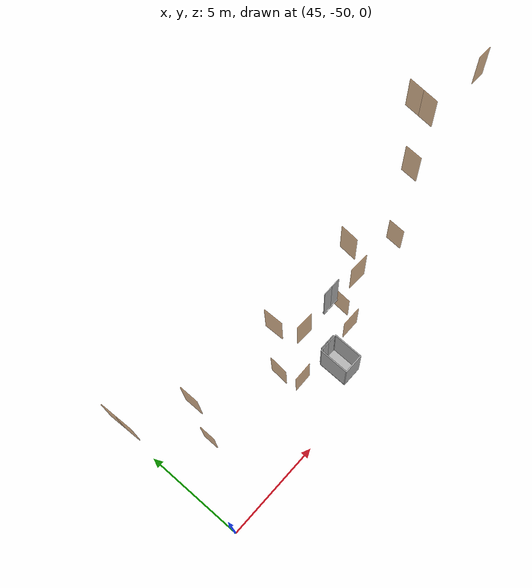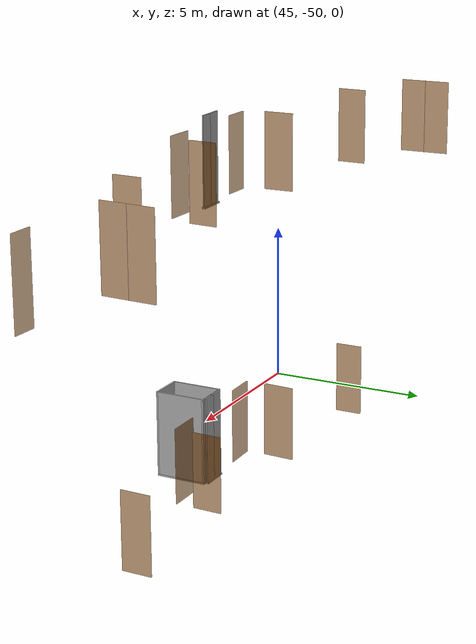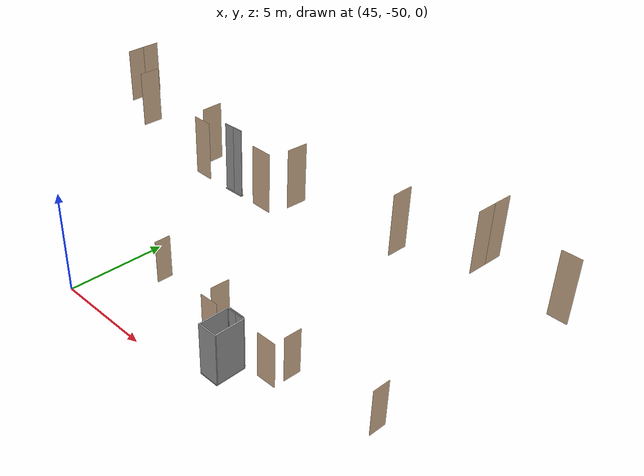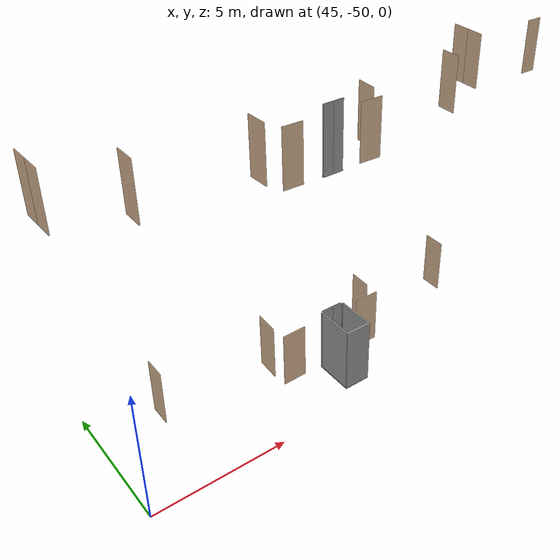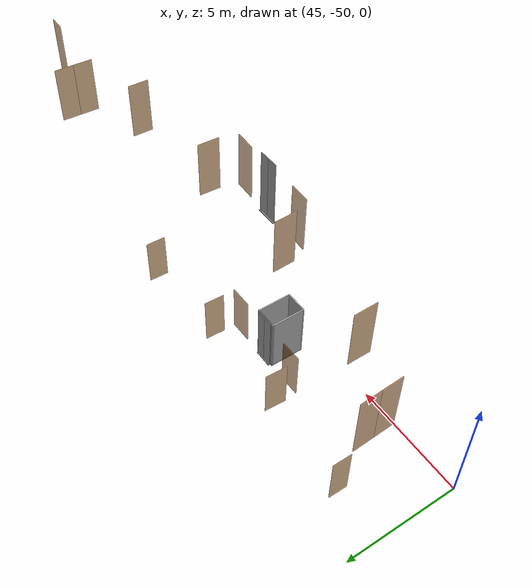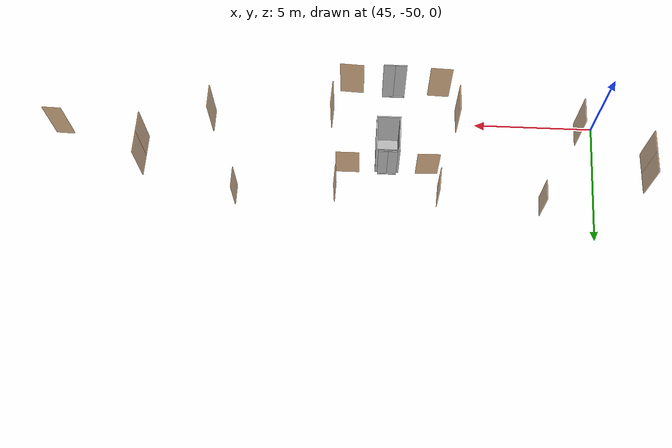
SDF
<sdf version="1.7">
 <world name="estce">
  <model name="bano01">
   <pose>47.27149607737123 -46.41799548548202 0.0 0 0 1.5707963267948966</pose>
   <link name="right">
    <pose>0 0 1.11 0 0 0</pose>
    <visual name="right_visual">
     <geometry><box><size>0.8199446803225976 0.03 2.2</size></box></geometry>
     <material><ambient>0.5 0.25 0 0.6</ambient><diffuse>0.5 0.25 0 0.6</diffuse></material>
    </visual>
    <collision name="right_collision">
     <geometry><box><size>0.8199446803225976 0.03 2.2</size></box></geometry>
     <surface><contact><collide_bitmask>0x02</collide_bitmask></contact></surface>
    </collision>
    <inertial>
     <mass>50.0</mass>
     <inertia><ixx>20.17041666666667</ixx><iyy>22.967955328288866</iyy><izz>2.805038661622195</izz></inertia>
    </inertial>
   </link>
   <joint name="right_joint" type="revolute">
    <parent>world</parent>
    <child>right</child>
    <axis><xyz>0 0 -1</xyz><limit><lower>0</lower><upper>1.57</upper></limit></axis>
    <pose>0.4149723401612988 0 0 0 0 0</pose>
   </joint>
   <plugin name="door" filename="libdoor.so">
    <v_max_door>0.5</v_max_door>
    <a_max_door>0.3</a_max_door>
    <a_nom_door>0.15</a_nom_door>
    <dx_min_door>0.01</dx_min_door>
    <f_max_door>500.0</f_max_door>
    <door name="bano01" type="SwingDoor" left_joint_name="empty_joint" right_joint_name="right_joint"/>
   </plugin>
  </model>
  <model name="bano05">
   <pose>52.06670083466635 -47.72443394818039 0.0 0 0 -3.1200870272772754</pose>
   <link name="right">
    <pose>0 0 1.11 0 0 0</pose>
    <visual name="right_visual">
     <geometry><box><size>0.9377301620501713 0.03 2.2</size></box></geometry>
     <material><ambient>0.5 0.25 0 0.6</ambient><diffuse>0.5 0.25 0 0.6</diffuse></material>
    </visual>
    <collision name="right_collision">
     <geometry><box><size>0.9377301620501713 0.03 2.2</size></box></geometry>
     <surface><contact><collide_bitmask>0x02</collide_bitmask></contact></surface>
    </collision>
    <inertial>
     <mass>50.0</mass>
     <inertia><ixx>20.17041666666667</ixx><iyy>23.830574403411006</iyy><izz>3.6676577367443364</izz></inertia>
    </inertial>
   </link>
   <joint name="right_joint" type="revolute">
    <parent>world</parent>
    <child>right</child>
    <axis><xyz>0 0 -1</xyz><limit><lower>0</lower><upper>1.57</upper></limit></axis>
    <pose>0.4738650810250857 0 0 0 0 0</pose>
   </joint>
   <plugin name="door" filename="libdoor.so">
    <v_max_door>0.5</v_max_door>
    <a_max_door>0.3</a_max_door>
    <a_nom_door>0.15</a_nom_door>
    <dx_min_door>0.01</dx_min_door>
    <f_max_door>500.0</f_max_door>
    <door name="bano05" type="SwingDoor" left_joint_name="empty_joint" right_joint_name="right_joint"/>
   </plugin>
  </model>
  <model name="bano06">
   <pose>55.41423266186635 -47.68037463002387 0.0 0 0 0.0023663209530105163</pose>
   <link name="right">
    <pose>0 0 1.11 0 0 0</pose>
    <visual name="right_visual">
     <geometry><box><size>0.976455656863217 0.03 2.2</size></box></geometry>
     <material><ambient>0.5 0.25 0 0.6</ambient><diffuse>0.5 0.25 0 0.6</diffuse></material>
    </visual>
    <collision name="right_collision">
     <geometry><box><size>0.976455656863217 0.03 2.2</size></box></geometry>
     <surface><contact><collide_bitmask>0x02</collide_bitmask></contact></surface>
    </collision>
    <inertial>
     <mass>50.0</mass>
     <inertia><ixx>20.17041666666667</ixx><iyy>24.139440207584073</iyy><izz>3.9765235409174027</izz></inertia>
    </inertial>
   </link>
   <joint name="right_joint" type="revolute">
    <parent>world</parent>
    <child>right</child>
    <axis><xyz>0 0 1</xyz><limit><lower>0</lower><upper>1.57</upper></limit></axis>
    <pose>0.4932278284316085 0 0 0 0 0</pose>
   </joint>
   <plugin name="door" filename="libdoor.so">
    <v_max_door>0.5</v_max_door>
    <a_max_door>0.3</a_max_door>
    <a_nom_door>0.15</a_nom_door>
    <dx_min_door>0.01</dx_min_door>
    <f_max_door>500.0</f_max_door>
    <door name="bano06" type="SwingDoor" left_joint_name="empty_joint" right_joint_name="right_joint"/>
   </plugin>
  </model>
  <model name="TD0008CW">
   <pose>55.8966070053002 -46.72136061243229 0.0 0 0 1.5301015660938087</pose>
   <link name="right">
    <pose>0 0 1.11 0 0 0</pose>
    <visual name="right_visual">
     <geometry><box><size>0.8644361759346737 0.03 2.2</size></box></geometry>
     <material><ambient>0.5 0.25 0 0.6</ambient><diffuse>0.5 0.25 0 0.6</diffuse></material>
    </visual>
    <collision name="right_collision">
     <geometry><box><size>0.8644361759346737 0.03 2.2</size></box></geometry>
     <surface><contact><collide_bitmask>0x02</collide_bitmask></contact></surface>
    </collision>
    <inertial>
     <mass>50.0</mass>
     <inertia><ixx>20.17041666666667</ixx><iyy>23.280207926102346</iyy><izz>3.117291259435676</izz></inertia>
    </inertial>
   </link>
   <joint name="right_joint" type="revolute">
    <parent>world</parent>
    <child>right</child>
    <axis><xyz>0 0 1</xyz><limit><lower>0</lower><upper>1.57</upper></limit></axis>
    <pose>0.43721808796733685 0 0 0 0 0</pose>
   </joint>
   <plugin name="door" filename="libdoor.so">
    <v_max_door>0.5</v_max_door>
    <a_max_door>0.3</a_max_door>
    <a_nom_door>0.15</a_nom_door>
    <dx_min_door>0.01</dx_min_door>
    <f_max_door>500.0</f_max_door>
    <door name="TD0008CW" type="SwingDoor" left_joint_name="empty_joint" right_joint_name="right_joint"/>
   </plugin>
  </model>
  <model name="TD0007CW">
   <pose>51.58219422672672 -46.71441391912132 0.0 0 0 1.5172743729555838</pose>
   <link name="right">
    <pose>0 0 1.11 0 0 0</pose>
    <visual name="right_visual">
     <geometry><box><size>0.9398812216442772 0.03 2.2</size></box></geometry>
     <material><ambient>0.5 0.25 0 0.6</ambient><diffuse>0.5 0.25 0 0.6</diffuse></material>
    </visual>
    <collision name="right_collision">
     <geometry><box><size>0.9398812216442772 0.03 2.2</size></box></geometry>
     <surface><contact><collide_bitmask>0x02</collide_bitmask></contact></surface>
    </collision>
    <inertial>
     <mass>50.0</mass>
     <inertia><ixx>20.17041666666667</ixx><iyy>23.847402961664752</iyy><izz>3.6844862949980794</izz></inertia>
    </inertial>
   </link>
   <joint name="right_joint" type="revolute">
    <parent>world</parent>
    <child>right</child>
    <axis><xyz>0 0 -1</xyz><limit><lower>0</lower><upper>1.57</upper></limit></axis>
    <pose>0.4749406108221386 0 0 0 0 0</pose>
   </joint>
   <plugin name="door" filename="libdoor.so">
    <v_max_door>0.5</v_max_door>
    <a_max_door>0.3</a_max_door>
    <a_nom_door>0.15</a_nom_door>
    <dx_min_door>0.01</dx_min_door>
    <f_max_door>500.0</f_max_door>
    <door name="TD0007CW" type="SwingDoor" left_joint_name="empty_joint" right_joint_name="right_joint"/>
   </plugin>
  </model>
  <model name="bano07">
   <pose>60.06898852289842 -46.43233776989466 0.0 0 0 1.54727733475389</pose>
   <link name="right">
    <pose>0 0 1.11 0 0 0</pose>
    <visual name="right_visual">
     <geometry><box><size>0.8585207486559601 0.03 2.2</size></box></geometry>
     <material><ambient>0.5 0.25 0 0.6</ambient><diffuse>0.5 0.25 0 0.6</diffuse></material>
    </visual>
    <collision name="right_collision">
     <geometry><box><size>0.8585207486559601 0.03 2.2</size></box></geometry>
     <surface><contact><collide_bitmask>0x02</collide_bitmask></contact></surface>
    </collision>
    <inertial>
     <mass>50.0</mass>
     <inertia><ixx>20.17041666666667</ixx><iyy>23.237741149469965</iyy><izz>3.0748244828032925</izz></inertia>
    </inertial>
   </link>
   <joint name="right_joint" type="revolute">
    <parent>world</parent>
    <child>right</child>
    <axis><xyz>0 0 1</xyz><limit><lower>0</lower><upper>1.57</upper></limit></axis>
    <pose>0.43426037432798004 0 0 0 0 0</pose>
   </joint>
   <plugin name="door" filename="libdoor.so">
    <v_max_door>0.5</v_max_door>
    <a_max_door>0.3</a_max_door>
    <a_nom_door>0.15</a_nom_door>
    <dx_min_door>0.01</dx_min_door>
    <f_max_door>500.0</f_max_door>
    <door name="bano07" type="SwingDoor" left_joint_name="empty_joint" right_joint_name="right_joint"/>
   </plugin>
  </model>
  <model name="TD1118CP4">
   <pose>44.94644914665497 -45.02413210114766 8.0 0 0 -1.5336877245950296</pose>
   <link name="right">
    <pose>0.3714555084669651 0 1.11 0 0 0</pose>
    <visual name="right_visual">
     <geometry><box><size>0.7329110169339302 0.03 2.2</size></box></geometry>
     <material><ambient>0.5 0.25 0 0.6</ambient><diffuse>0.5 0.25 0 0.6</diffuse></material>
    </visual>
    <collision name="right_collision">
     <geometry><box><size>0.7329110169339302 0.03 2.2</size></box></geometry>
     <surface><contact><collide_bitmask>0x02</collide_bitmask></contact></surface>
    </collision>
    <inertial>
     <mass>50.0</mass>
     <inertia><ixx>20.17041666666667</ixx><iyy>22.40482732809637</iyy><izz>2.2419106614296993</izz></inertia>
    </inertial>
   </link>
   <joint name="right_joint" type="revolute">
    <parent>world</parent>
    <child>right</child>
    <axis><xyz>0 0 -1</xyz><limit><lower>0</lower><upper>1.57</upper></limit></axis>
    <pose>0.3714555084669651 0 0 0 0 0</pose>
   </joint>
   <link name="left">
    <pose>-0.3714555084669651 0 1.11 0 0 0</pose>
    <visual name="left_visual">
     <geometry><box><size>0.7329110169339302 0.03 2.2</size></box></geometry>
     <material><ambient>0.5 0.25 0 0.6</ambient><diffuse>0.5 0.25 0 0.6</diffuse></material>
    </visual>
    <collision name="left_collision">
     <geometry><box><size>0.7329110169339302 0.03 2.2</size></box></geometry>
     <surface><contact><collide_bitmask>0x02</collide_bitmask></contact></surface>
    </collision>
    <inertial>
     <mass>50.0</mass>
     <inertia><ixx>20.17041666666667</ixx><iyy>22.40482732809637</iyy><izz>2.2419106614296993</izz></inertia>
    </inertial>
   </link>
   <joint name="left_joint" type="revolute">
    <parent>world</parent>
    <child>left</child>
    <axis><xyz>0 0 -1</xyz><limit><lower>-1.57</lower><upper>0</upper></limit></axis>
    <pose>-0.3714555084669651 0 0 0 0 0</pose>
   </joint>
   <plugin name="door" filename="libdoor.so">
    <v_max_door>0.5</v_max_door>
    <a_max_door>0.3</a_max_door>
    <a_nom_door>0.15</a_nom_door>
    <dx_min_door>0.01</dx_min_door>
    <f_max_door>500.0</f_max_door>
    <door name="TD1118CP4" type="DoubleSwingDoor" left_joint_name="left_joint" right_joint_name="right_joint"/>
   </plugin>
  </model>
  <model name="TD0114CW">
   <pose>51.50515808954793 -46.74820920088596 8.0 0 0 1.6056425163225825</pose>
   <link name="right">
    <pose>0 0 1.11 0 0 0</pose>
    <visual name="right_visual">
     <geometry><box><size>0.8454856513248106 0.03 2.2</size></box></geometry>
     <material><ambient>0.5 0.25 0 0.6</ambient><diffuse>0.5 0.25 0 0.6</diffuse></material>
    </visual>
    <collision name="right_collision">
     <geometry><box><size>0.8454856513248106 0.03 2.2</size></box></geometry>
     <surface><contact><collide_bitmask>0x02</collide_bitmask></contact></surface>
    </collision>
    <inertial>
     <mass>50.0</mass>
     <inertia><ixx>20.17041666666667</ixx><iyy>23.145191610817253</iyy><izz>2.9822749441505803</izz></inertia>
    </inertial>
   </link>
   <joint name="right_joint" type="revolute">
    <parent>world</parent>
    <child>right</child>
    <axis><xyz>0 0 -1</xyz><limit><lower>0</lower><upper>1.57</upper></limit></axis>
    <pose>0.4277428256624053 0 0 0 0 0</pose>
   </joint>
   <plugin name="door" filename="libdoor.so">
    <v_max_door>0.5</v_max_door>
    <a_max_door>0.3</a_max_door>
    <a_nom_door>0.15</a_nom_door>
    <dx_min_door>0.01</dx_min_door>
    <f_max_door>500.0</f_max_door>
    <door name="TD0114CW" type="SwingDoor" left_joint_name="empty_joint" right_joint_name="right_joint"/>
   </plugin>
  </model>
  <model name="bano1">
   <pose>47.28208015738405 -46.41913130619041 8.0 0 0 1.5764696971908632</pose>
   <link name="right">
    <pose>0 0 1.11 0 0 0</pose>
    <visual name="right_visual">
     <geometry><box><size>0.8397545239237783 0.03 2.2</size></box></geometry>
     <material><ambient>0.5 0.25 0 0.6</ambient><diffuse>0.5 0.25 0 0.6</diffuse></material>
    </visual>
    <collision name="right_collision">
     <geometry><box><size>0.8397545239237783 0.03 2.2</size></box></geometry>
     <surface><contact><collide_bitmask>0x02</collide_bitmask></contact></surface>
    </collision>
    <inertial>
     <mass>50.0</mass>
     <inertia><ixx>20.17041666666667</ixx><iyy>23.104948585210217</iyy><izz>2.942031918543548</izz></inertia>
    </inertial>
   </link>
   <joint name="right_joint" type="revolute">
    <parent>world</parent>
    <child>right</child>
    <axis><xyz>0 0 -1</xyz><limit><lower>0</lower><upper>1.57</upper></limit></axis>
    <pose>0.42487726196188913 0 0 0 0 0</pose>
   </joint>
   <plugin name="door" filename="libdoor.so">
    <v_max_door>0.5</v_max_door>
    <a_max_door>0.3</a_max_door>
    <a_nom_door>0.15</a_nom_door>
    <dx_min_door>0.01</dx_min_door>
    <f_max_door>500.0</f_max_door>
    <door name="bano1" type="SwingDoor" left_joint_name="empty_joint" right_joint_name="right_joint"/>
   </plugin>
  </model>
  <model name="bano5">
   <pose>52.148068485913775 -47.74097451939845 8.0 0 0 3.1065786581625146</pose>
   <link name="right">
    <pose>0 0 1.11 0 0 0</pose>
    <visual name="right_visual">
     <geometry><box><size>0.7657234564264961 0.03 2.2</size></box></geometry>
     <material><ambient>0.5 0.25 0 0.6</ambient><diffuse>0.5 0.25 0 0.6</diffuse></material>
    </visual>
    <collision name="right_collision">
     <geometry><box><size>0.7657234564264961 0.03 2.2</size></box></geometry>
     <surface><contact><collide_bitmask>0x02</collide_bitmask></contact></surface>
    </collision>
    <inertial>
     <mass>50.0</mass>
     <inertia><ixx>20.17041666666667</ixx><iyy>22.60971838217392</iyy><izz>2.44680171550725</izz></inertia>
    </inertial>
   </link>
   <joint name="right_joint" type="revolute">
    <parent>world</parent>
    <child>right</child>
    <axis><xyz>0 0 -1</xyz><limit><lower>0</lower><upper>1.57</upper></limit></axis>
    <pose>0.38786172821324805 0 0 0 0 0</pose>
   </joint>
   <plugin name="door" filename="libdoor.so">
    <v_max_door>0.5</v_max_door>
    <a_max_door>0.3</a_max_door>
    <a_nom_door>0.15</a_nom_door>
    <dx_min_door>0.01</dx_min_door>
    <f_max_door>500.0</f_max_door>
    <door name="bano5" type="SwingDoor" left_joint_name="empty_joint" right_joint_name="right_joint"/>
   </plugin>
  </model>
  <model name="bano6">
   <pose>55.234940433910175 -47.778894369654296 8.0 0 0 -0.04549059902802838</pose>
   <link name="right">
    <pose>0 0 1.11 0 0 0</pose>
    <visual name="right_visual">
     <geometry><box><size>0.8297533818517685 0.03 2.2</size></box></geometry>
     <material><ambient>0.5 0.25 0 0.6</ambient><diffuse>0.5 0.25 0 0.6</diffuse></material>
    </visual>
    <collision name="right_collision">
     <geometry><box><size>0.8297533818517685 0.03 2.2</size></box></geometry>
     <surface><contact><collide_bitmask>0x02</collide_bitmask></contact></surface>
    </collision>
    <inertial>
     <mass>50.0</mass>
     <inertia><ixx>20.17041666666667</ixx><iyy>23.035377811226866</iyy><izz>2.8724611445601953</izz></inertia>
    </inertial>
   </link>
   <joint name="right_joint" type="revolute">
    <parent>world</parent>
    <child>right</child>
    <axis><xyz>0 0 1</xyz><limit><lower>0</lower><upper>1.57</upper></limit></axis>
    <pose>0.41987669092588426 0 0 0 0 0</pose>
   </joint>
   <plugin name="door" filename="libdoor.so">
    <v_max_door>0.5</v_max_door>
    <a_max_door>0.3</a_max_door>
    <a_nom_door>0.15</a_nom_door>
    <dx_min_door>0.01</dx_min_door>
    <f_max_door>500.0</f_max_door>
    <door name="bano6" type="SwingDoor" left_joint_name="empty_joint" right_joint_name="right_joint"/>
   </plugin>
  </model>
  <model name="TD0115CW">
   <pose>55.88847397362011 -46.73766025088821 8.0 0 0 1.5145458440551605</pose>
   <link name="right">
    <pose>0 0 1.11 0 0 0</pose>
    <visual name="right_visual">
     <geometry><box><size>0.8030795554057361 0.03 2.2</size></box></geometry>
     <material><ambient>0.5 0.25 0 0.6</ambient><diffuse>0.5 0.25 0 0.6</diffuse></material>
    </visual>
    <collision name="right_collision">
     <geometry><box><size>0.8030795554057361 0.03 2.2</size></box></geometry>
     <surface><contact><collide_bitmask>0x02</collide_bitmask></contact></surface>
    </collision>
    <inertial>
     <mass>50.0</mass>
     <inertia><ixx>20.17041666666667</ixx><iyy>22.853903217961147</iyy><izz>2.690986551294478</izz></inertia>
    </inertial>
   </link>
   <joint name="right_joint" type="revolute">
    <parent>world</parent>
    <child>right</child>
    <axis><xyz>0 0 1</xyz><limit><lower>0</lower><upper>1.57</upper></limit></axis>
    <pose>0.40653977770286803 0 0 0 0 0</pose>
   </joint>
   <plugin name="door" filename="libdoor.so">
    <v_max_door>0.5</v_max_door>
    <a_max_door>0.3</a_max_door>
    <a_nom_door>0.15</a_nom_door>
    <dx_min_door>0.01</dx_min_door>
    <f_max_door>500.0</f_max_door>
    <door name="TD0115CW" type="SwingDoor" left_joint_name="empty_joint" right_joint_name="right_joint"/>
   </plugin>
  </model>
  <model name="bano7">
   <pose>60.0810335978438 -46.42408954515949 8.0 0 0 1.541245749789117</pose>
   <link name="right">
    <pose>0 0 1.11 0 0 0</pose>
    <visual name="right_visual">
     <geometry><box><size>0.7806089194577953 0.03 2.2</size></box></geometry>
     <material><ambient>0.5 0.25 0 0.6</ambient><diffuse>0.5 0.25 0 0.6</diffuse></material>
    </visual>
    <collision name="right_collision">
     <geometry><box><size>0.7806089194577953 0.03 2.2</size></box></geometry>
     <surface><contact><collide_bitmask>0x02</collide_bitmask></contact></surface>
    </collision>
    <inertial>
     <mass>50.0</mass>
     <inertia><ixx>20.17041666666667</ixx><iyy>22.70562618807112</iyy><izz>2.5427095214044453</izz></inertia>
    </inertial>
   </link>
   <joint name="right_joint" type="revolute">
    <parent>world</parent>
    <child>right</child>
    <axis><xyz>0 0 1</xyz><limit><lower>0</lower><upper>1.57</upper></limit></axis>
    <pose>0.39530445972889766 0 0 0 0 0</pose>
   </joint>
   <plugin name="door" filename="libdoor.so">
    <v_max_door>0.5</v_max_door>
    <a_max_door>0.3</a_max_door>
    <a_nom_door>0.15</a_nom_door>
    <dx_min_door>0.01</dx_min_door>
    <f_max_door>500.0</f_max_door>
    <door name="bano7" type="SwingDoor" left_joint_name="empty_joint" right_joint_name="right_joint"/>
   </plugin>
  </model>
  <model name="TD0121CI">
   <pose>65.33917160585753 -45.769495344585565 8.0 0 0 -0.030342913966224207</pose>
   <link name="right">
    <pose>0 0 1.11 0 0 0</pose>
    <visual name="right_visual">
     <geometry><box><size>0.6424077246111844 0.03 2.2</size></box></geometry>
     <material><ambient>0.5 0.25 0 0.6</ambient><diffuse>0.5 0.25 0 0.6</diffuse></material>
    </visual>
    <collision name="right_collision">
     <geometry><box><size>0.6424077246111844 0.03 2.2</size></box></geometry>
     <surface><contact><collide_bitmask>0x02</collide_bitmask></contact></surface>
    </collision>
    <inertial>
     <mass>50.0</mass>
     <inertia><ixx>20.17041666666667</ixx><iyy>21.886198686000505</iyy><izz>1.723282019333831</izz></inertia>
    </inertial>
   </link>
   <joint name="right_joint" type="revolute">
    <parent>world</parent>
    <child>right</child>
    <axis><xyz>0 0 1</xyz><limit><lower>0</lower><upper>1.57</upper></limit></axis>
    <pose>0.32620386230559223 0 0 0 0 0</pose>
   </joint>
   <plugin name="door" filename="libdoor.so">
    <v_max_door>0.5</v_max_door>
    <a_max_door>0.3</a_max_door>
    <a_nom_door>0.15</a_nom_door>
    <dx_min_door>0.01</dx_min_door>
    <f_max_door>500.0</f_max_door>
    <door name="TD0121CI" type="SwingDoor" left_joint_name="empty_joint" right_joint_name="right_joint"/>
   </plugin>
  </model>
  <model name="TD0119CP2">
   <pose>62.408047540033564 -45.011140276778626 8.0 0 0 1.5193640332775675</pose>
   <link name="right">
    <pose>0.3663535106896813 0 1.11 0 0 0</pose>
    <visual name="right_visual">
     <geometry><box><size>0.7227070213793626 0.03 2.2</size></box></geometry>
     <material><ambient>0.5 0.25 0 0.6</ambient><diffuse>0.5 0.25 0 0.6</diffuse></material>
    </visual>
    <collision name="right_collision">
     <geometry><box><size>0.7227070213793626 0.03 2.2</size></box></geometry>
     <surface><contact><collide_bitmask>0x02</collide_bitmask></contact></surface>
    </collision>
    <inertial>
     <mass>50.0</mass>
     <inertia><ixx>20.17041666666667</ixx><iyy>22.342939328129297</iyy><izz>2.1800226614626275</izz></inertia>
    </inertial>
   </link>
   <joint name="right_joint" type="revolute">
    <parent>world</parent>
    <child>right</child>
    <axis><xyz>0 0 -1</xyz><limit><lower>0</lower><upper>1.57</upper></limit></axis>
    <pose>0.3663535106896813 0 0 0 0 0</pose>
   </joint>
   <link name="left">
    <pose>-0.3663535106896813 0 1.11 0 0 0</pose>
    <visual name="left_visual">
     <geometry><box><size>0.7227070213793626 0.03 2.2</size></box></geometry>
     <material><ambient>0.5 0.25 0 0.6</ambient><diffuse>0.5 0.25 0 0.6</diffuse></material>
    </visual>
    <collision name="left_collision">
     <geometry><box><size>0.7227070213793626 0.03 2.2</size></box></geometry>
     <surface><contact><collide_bitmask>0x02</collide_bitmask></contact></surface>
    </collision>
    <inertial>
     <mass>50.0</mass>
     <inertia><ixx>20.17041666666667</ixx><iyy>22.342939328129297</iyy><izz>2.1800226614626275</izz></inertia>
    </inertial>
   </link>
   <joint name="left_joint" type="revolute">
    <parent>world</parent>
    <child>left</child>
    <axis><xyz>0 0 -1</xyz><limit><lower>-1.57</lower><upper>0</upper></limit></axis>
    <pose>-0.3663535106896813 0 0 0 0 0</pose>
   </joint>
   <plugin name="door" filename="libdoor.so">
    <v_max_door>0.5</v_max_door>
    <a_max_door>0.3</a_max_door>
    <a_nom_door>0.15</a_nom_door>
    <dx_min_door>0.01</dx_min_door>
    <f_max_door>500.0</f_max_door>
    <door name="TD0119CP2" type="DoubleSwingDoor" left_joint_name="left_joint" right_joint_name="right_joint"/>
   </plugin>
  </model>
  <model name="ShaftDoor_lift2td0_L1_lift2_door">
   <pose>53.75551043547694 -47.68096139483516 0.0 0 0 0.0</pose>
   <link name="right_door">
    <pose>0.2 0 1.25 0 0 0</pose>
    <visual name="right_door_visual">
     <geometry><box><size>0.4 0.03 2.5</size></box></geometry>
     <material>
      <ambient>0.5 0.5 0.5 1</ambient>
      <diffuse>0.7 0.7 0.7 1</diffuse>
      <specular>0.6 0.6 0.6 1</specular>
      <emissive>0.1 0.1 0.1 1</emissive>
     </material>
    </visual>
    <collision name="right_door_collision">
     <geometry><box><size>0.4 0.03 2.5</size></box></geometry>
     <surface><contact><collide_bitmask>0x02</collide_bitmask></contact></surface>
    </collision>
   </link>
   <joint name="right_joint" type="prismatic">
    <parent>world</parent>
    <child>right_door</child>
    <axis><xyz>1 0 0</xyz><limit><lower>0</lower><upper>0.4</upper></limit></axis>
   </joint>
   <link name="left_door">
    <pose>-0.2 0 1.25 0 0 0</pose>
    <visual name="left_door_visual">
     <geometry><box><size>0.4 0.03 2.5</size></box></geometry>
     <material>
      <ambient>0.5 0.5 0.5 1</ambient>
      <diffuse>0.7 0.7 0.7 1</diffuse>
      <specular>0.6 0.6 0.6 1</specular>
      <emissive>0.1 0.1 0.1 1</emissive>
     </material>
    </visual>
    <collision name="left_door_collision">
     <geometry><box><size>0.4 0.03 2.5</size></box></geometry>
     <surface><contact><collide_bitmask>0x02</collide_bitmask></contact></surface>
    </collision>
   </link>
   <joint name="left_joint" type="prismatic">
    <parent>world</parent>
    <child>left_door</child>
    <axis><xyz>1 0 0</xyz><limit><lower>-0.4</lower><upper>0</upper></limit></axis>
   </joint>
   <link name="ramp">
    <pose>0 0 -0.025 0 0 0</pose>
    <visual name="ramp_visual">
     <geometry><box><size>0.8 0.1 0.05</size></box></geometry>
     <material>
      <ambient>0.5 0.5 0.5 1</ambient>
      <diffuse>0.7 0.7 0.7 1</diffuse>
      <specular>0.6 0.6 0.6 1</specular>
      <emissive>0.1 0.1 0.1 1</emissive>
     </material>
    </visual>
    <collision name="ramp_collision">
     <geometry><box><size>0.8 0.1 0.05</size></box></geometry>
     <surface><contact><collide_bitmask>0x02</collide_bitmask></contact></surface>
    </collision>
   </link>
   <joint name="ramp_joint" type="fixed"><parent>world</parent><child>ramp</child></joint>
   <plugin name="door" filename="libdoor.so">
    <v_max_door>0.3</v_max_door>
    <a_max_door>0.2</a_max_door>
    <a_nom_door>0.1</a_nom_door>
    <dx_min_door>0.0001</dx_min_door>
    <f_max_door>35.0</f_max_door>
    <door left_joint_name="left_joint" name="ShaftDoor_lift2td0_L1_lift2_door" right_joint_name="right_joint" type="DoubleSlidingDoor"/>
   </plugin>
  </model>
  <model name="ShaftDoor_lift2td0_L2_lift2_door">
   <pose>53.75551043547694 -47.68096139483516 8.0 0 0 0.0</pose>
   <link name="right_door">
    <pose>0.2 0 1.25 0 0 0</pose>
    <visual name="right_door_visual">
     <geometry><box><size>0.4 0.03 2.5</size></box></geometry>
     <material>
      <ambient>0.5 0.5 0.5 1</ambient>
      <diffuse>0.7 0.7 0.7 1</diffuse>
      <specular>0.6 0.6 0.6 1</specular>
      <emissive>0.1 0.1 0.1 1</emissive>
     </material>
    </visual>
    <collision name="right_door_collision">
     <geometry><box><size>0.4 0.03 2.5</size></box></geometry>
     <surface><contact><collide_bitmask>0x02</collide_bitmask></contact></surface>
    </collision>
   </link>
   <joint name="right_joint" type="prismatic">
    <parent>world</parent>
    <child>right_door</child>
    <axis><xyz>1 0 0</xyz><limit><lower>0</lower><upper>0.4</upper></limit></axis>
   </joint>
   <link name="left_door">
    <pose>-0.2 0 1.25 0 0 0</pose>
    <visual name="left_door_visual">
     <geometry><box><size>0.4 0.03 2.5</size></box></geometry>
     <material>
      <ambient>0.5 0.5 0.5 1</ambient>
      <diffuse>0.7 0.7 0.7 1</diffuse>
      <specular>0.6 0.6 0.6 1</specular>
      <emissive>0.1 0.1 0.1 1</emissive>
     </material>
    </visual>
    <collision name="left_door_collision">
     <geometry><box><size>0.4 0.03 2.5</size></box></geometry>
     <surface><contact><collide_bitmask>0x02</collide_bitmask></contact></surface>
    </collision>
   </link>
   <joint name="left_joint" type="prismatic">
    <parent>world</parent>
    <child>left_door</child>
    <axis><xyz>1 0 0</xyz><limit><lower>-0.4</lower><upper>0</upper></limit></axis>
   </joint>
   <link name="ramp">
    <pose>0 0 -0.025 0 0 0</pose>
    <visual name="ramp_visual">
     <geometry><box><size>0.8 0.1 0.05</size></box></geometry>
     <material>
      <ambient>0.5 0.5 0.5 1</ambient>
      <diffuse>0.7 0.7 0.7 1</diffuse>
      <specular>0.6 0.6 0.6 1</specular>
      <emissive>0.1 0.1 0.1 1</emissive>
     </material>
    </visual>
    <collision name="ramp_collision">
     <geometry><box><size>0.8 0.1 0.05</size></box></geometry>
     <surface><contact><collide_bitmask>0x02</collide_bitmask></contact></surface>
    </collision>
   </link>
   <joint name="ramp_joint" type="fixed"><parent>world</parent><child>ramp</child></joint>
   <plugin name="door" filename="libdoor.so">
    <v_max_door>0.3</v_max_door>
    <a_max_door>0.2</a_max_door>
    <a_nom_door>0.1</a_nom_door>
    <dx_min_door>0.0001</dx_min_door>
    <f_max_door>35.0</f_max_door>
    <door left_joint_name="left_joint" name="ShaftDoor_lift2td0_L2_lift2_door" right_joint_name="right_joint" type="DoubleSlidingDoor"/>
   </plugin>
  </model>
  <model name="lift2td0">
   <link name="platform">
    <inertial><mass>1200</mass><inertia><ixx>100.25</ixx><iyy>225.25</iyy><izz>325.0</izz></inertia></inertial>
    <visual name="floor_visual">
     <pose>0 0 -0.025 0 0 0</pose>
     <geometry><box><size>1.0 1.5 0.05</size></box></geometry>
     <material>
      <ambient>0.5 0.5 0.5 1</ambient>
      <diffuse>0.7 0.7 0.7 1</diffuse>
      <specular>0.6 0.6 0.6 1</specular>
      <emissive>0.1 0.1 0.1 1</emissive>
     </material>
    </visual>
    <collision name="floor_collision">
     <pose>0 0 -0.025 0 0 0</pose>
     <geometry><box><size>1.0 1.5 0.05</size></box></geometry>
     <surface><contact><collide_bitmask>0x01</collide_bitmask></contact></surface>
    </collision>
    <visual name="frontwall1_visual">
     <pose>-0.45 0.725 1.25 0 0 0</pose>
     <geometry><box><size>0.09999999999999998 0.05 2.5</size></box></geometry>
     <material>
      <ambient>0.5 0.5 0.5 1</ambient>
      <diffuse>0.7 0.7 0.7 1</diffuse>
      <specular>0.6 0.6 0.6 1</specular>
      <emissive>0.1 0.1 0.1 1</emissive>
     </material>
    </visual>
    <collision name="frontwall1_collision">
     <pose>-0.45 0.725 1.25 0 0 0</pose>
     <geometry><box><size>0.09999999999999998 0.05 2.5</size></box></geometry>
     <surface><contact><collide_bitmask>0x01</collide_bitmask></contact></surface>
    </collision>
    <visual name="frontwall2_visual">
     <pose>0.45 0.725 1.25 0 0 0</pose>
     <geometry><box><size>0.09999999999999998 0.05 2.5</size></box></geometry>
     <material>
      <ambient>0.5 0.5 0.5 1</ambient>
      <diffuse>0.7 0.7 0.7 1</diffuse>
      <specular>0.6 0.6 0.6 1</specular>
      <emissive>0.1 0.1 0.1 1</emissive>
     </material>
    </visual>
    <collision name="frontwall2_collision">
     <pose>0.45 0.725 1.25 0 0 0</pose>
     <geometry><box><size>0.09999999999999998 0.05 2.5</size></box></geometry>
     <surface><contact><collide_bitmask>0x01</collide_bitmask></contact></surface>
    </collision>
    <visual name="backwall1_visual">
     <pose>0.0 -0.725 1.25 0 0 0</pose>
     <geometry><box><size>1.0 0.05 2.5</size></box></geometry>
     <material>
      <ambient>0.5 0.5 0.5 1</ambient>
      <diffuse>0.7 0.7 0.7 1</diffuse>
      <specular>0.6 0.6 0.6 1</specular>
      <emissive>0.1 0.1 0.1 1</emissive>
     </material>
    </visual>
    <collision name="backwall1_collision">
     <pose>0.0 -0.725 1.25 0 0 0</pose>
     <geometry><box><size>1.0 0.05 2.5</size></box></geometry>
     <surface><contact><collide_bitmask>0x01</collide_bitmask></contact></surface>
    </collision>
    <visual name="leftwall1_visual">
     <pose>-0.475 0.0 1.25 0 0 1.5707963267948966</pose>
     <geometry><box><size>1.4 0.05 2.5</size></box></geometry>
     <material>
      <ambient>0.5 0.5 0.5 1</ambient>
      <diffuse>0.7 0.7 0.7 1</diffuse>
      <specular>0.6 0.6 0.6 1</specular>
      <emissive>0.1 0.1 0.1 1</emissive>
     </material>
    </visual>
    <collision name="leftwall1_collision">
     <pose>-0.475 0.0 1.25 0 0 1.5707963267948966</pose>
     <geometry><box><size>1.4 0.05 2.5</size></box></geometry>
     <surface><contact><collide_bitmask>0x01</collide_bitmask></contact></surface>
    </collision>
    <visual name="rightwall1_visual">
     <pose>0.475 0.0 1.25 0 0 1.5707963267948966</pose>
     <geometry><box><size>1.4 0.05 2.5</size></box></geometry>
     <material>
      <ambient>0.5 0.5 0.5 1</ambient>
      <diffuse>0.7 0.7 0.7 1</diffuse>
      <specular>0.6 0.6 0.6 1</specular>
      <emissive>0.1 0.1 0.1 1</emissive>
     </material>
    </visual>
    <collision name="rightwall1_collision">
     <pose>0.475 0.0 1.25 0 0 1.5707963267948966</pose>
     <geometry><box><size>1.4 0.05 2.5</size></box></geometry>
     <surface><contact><collide_bitmask>0x01</collide_bitmask></contact></surface>
    </collision>
   </link>
   <joint name="cabin_joint" type="prismatic">
    <parent>world</parent>
    <child>platform</child>
    <axis><xyz>0 0 1</xyz></axis>
   </joint>
   <model name="CabinDoor_lift2td0_lift2_door">
    <pose>0.0 0.725 0 0 0 0.0</pose>
    <link name="right_door">
     <pose>0.2 0 1.25 0 0 0</pose>
     <visual name="right_door_visual">
      <geometry><box><size>0.4 0.03 2.5</size></box></geometry>
      <material>
       <ambient>0.5 0.5 0.5 1</ambient>
       <diffuse>0.7 0.7 0.7 1</diffuse>
       <specular>0.6 0.6 0.6 1</specular>
       <emissive>0.1 0.1 0.1 1</emissive>
      </material>
     </visual>
     <collision name="right_door_collision">
      <geometry><box><size>0.4 0.03 2.5</size></box></geometry>
      <surface><contact><collide_bitmask>0x02</collide_bitmask></contact></surface>
     </collision>
    </link>
    <link name="platform">
     <inertial>
      <mass>0.001</mass>
      <inertia><ixx>1e-6</ixx><iyy>1e-6</iyy><izz>1e-6</izz><ixy>0</ixy><ixz>0</ixz><iyz>0</iyz></inertia>
     </inertial>
    </link>
    <joint name="right_joint" type="prismatic">
     <parent>platform</parent>
     <child>right_door</child>
     <axis><xyz>1 0 0</xyz><limit><lower>0</lower><upper>0.4</upper></limit></axis>
    </joint>
    <link name="left_door">
     <pose>-0.2 0 1.25 0 0 0</pose>
     <visual name="left_door_visual">
      <geometry><box><size>0.4 0.03 2.5</size></box></geometry>
      <material>
       <ambient>0.5 0.5 0.5 1</ambient>
       <diffuse>0.7 0.7 0.7 1</diffuse>
       <specular>0.6 0.6 0.6 1</specular>
       <emissive>0.1 0.1 0.1 1</emissive>
      </material>
     </visual>
     <collision name="left_door_collision">
      <geometry><box><size>0.4 0.03 2.5</size></box></geometry>
      <surface><contact><collide_bitmask>0x02</collide_bitmask></contact></surface>
     </collision>
    </link>
    <joint name="left_joint" type="prismatic">
     <parent>platform</parent>
     <child>left_door</child>
     <axis><xyz>1 0 0</xyz><limit><lower>-0.4</lower><upper>0</upper></limit></axis>
    </joint>
    <plugin name="door" filename="libdoor.so">
     <v_max_door>0.3</v_max_door>
     <a_max_door>0.2</a_max_door>
     <a_nom_door>0.1</a_nom_door>
     <dx_min_door>0.0001</dx_min_door>
     <f_max_door>35.0</f_max_door>
     <door left_joint_name="left_joint" name="CabinDoor_lift2td0_lift2_door" right_joint_name="right_joint" type="DoubleSlidingDoor"/>
    </plugin>
   </model>
   <plugin name="lift" filename="liblift.so">
    <lift_name>lift2td0</lift_name>
    <floor name="L1" elevation="0.0">
     <door_pair cabin_door="CabinDoor_lift2td0_lift2_door" shaft_door="ShaftDoor_lift2td0_L1_lift2_door"/>
    </floor>
    <floor name="L2" elevation="8.0">
     <door_pair cabin_door="CabinDoor_lift2td0_lift2_door" shaft_door="ShaftDoor_lift2td0_L2_lift2_door"/>
    </floor>
    <initial_floor>L1</initial_floor>
    <v_max_cabin>2.0</v_max_cabin>
    <a_max_cabin>1.2</a_max_cabin>
    <a_nom_cabin>1.0</a_nom_cabin>
    <dx_min_cabin>0.001</dx_min_cabin>
    <f_max_cabin>25323.0</f_max_cabin>
    <cabin_joint_name>cabin_joint</cabin_joint_name>
   </plugin>
   <pose>53.75551043547694 -48.480961394835155 0 0 0 0.0</pose>
  </model>
 </world>
</sdf>
